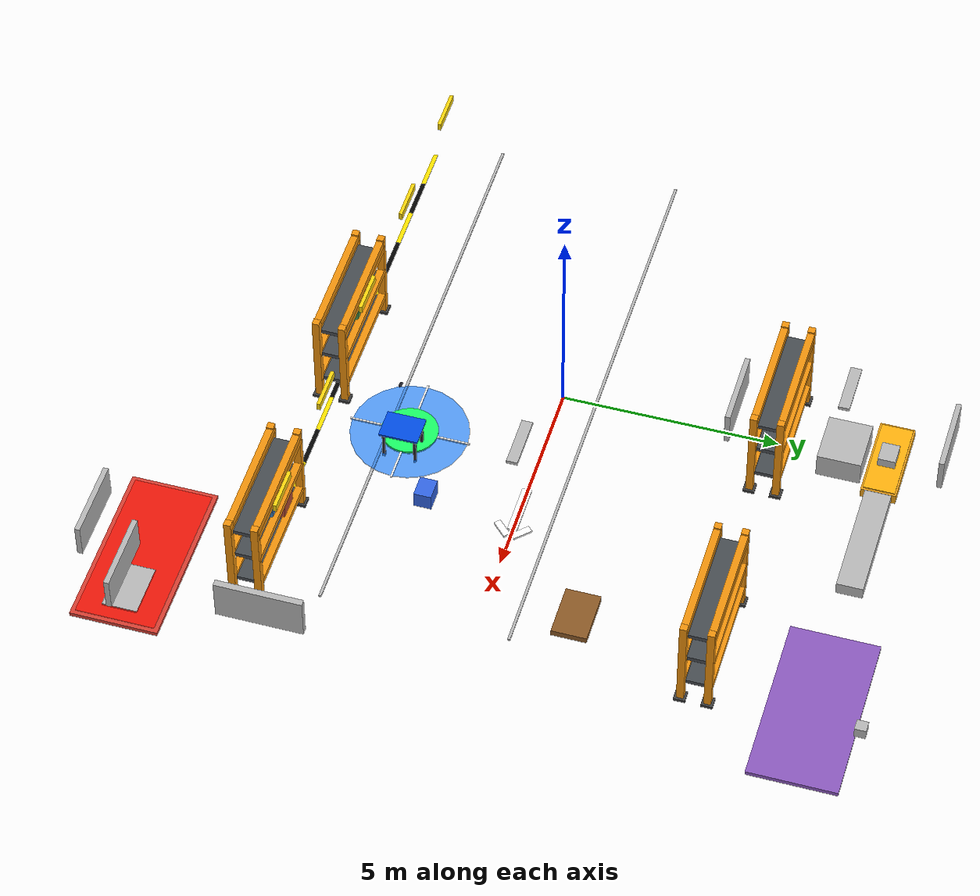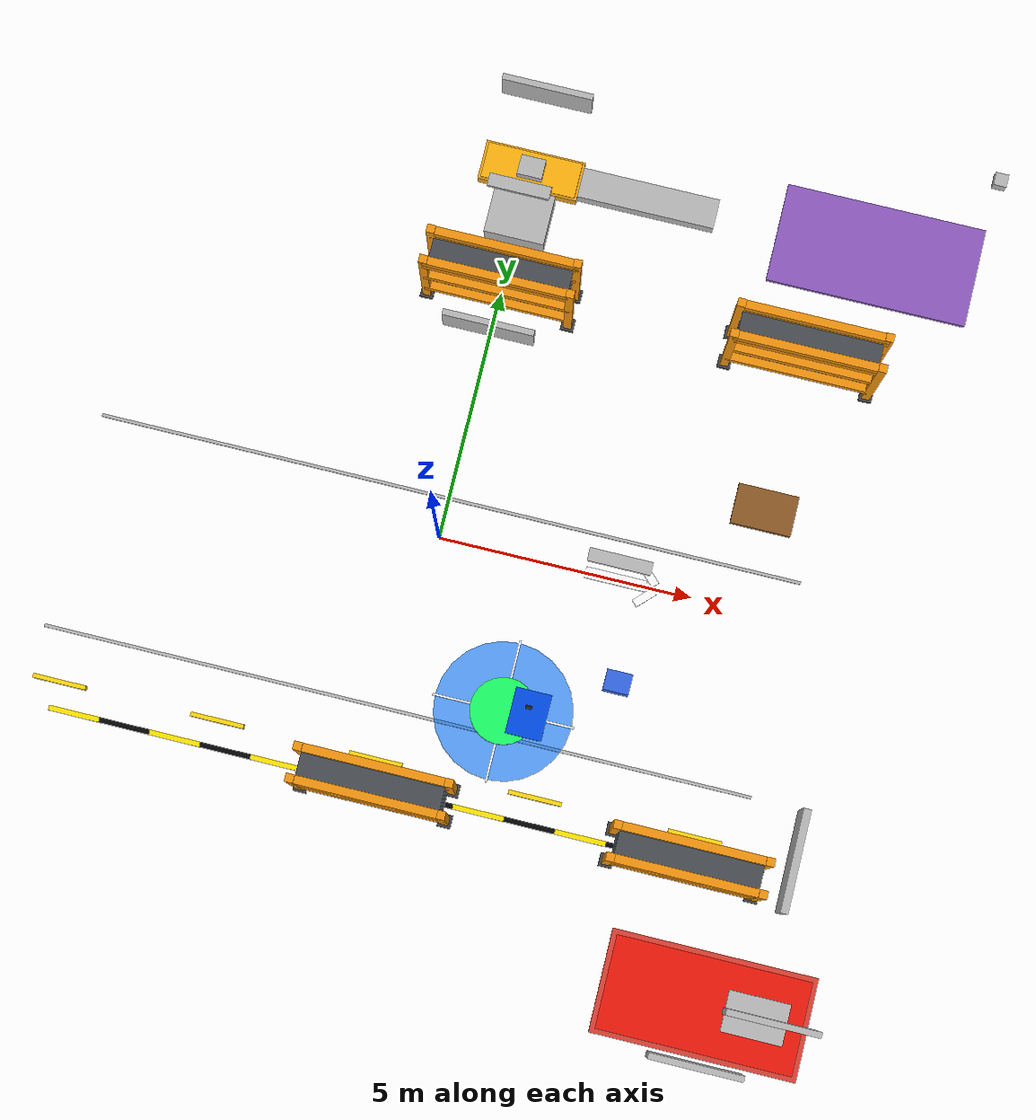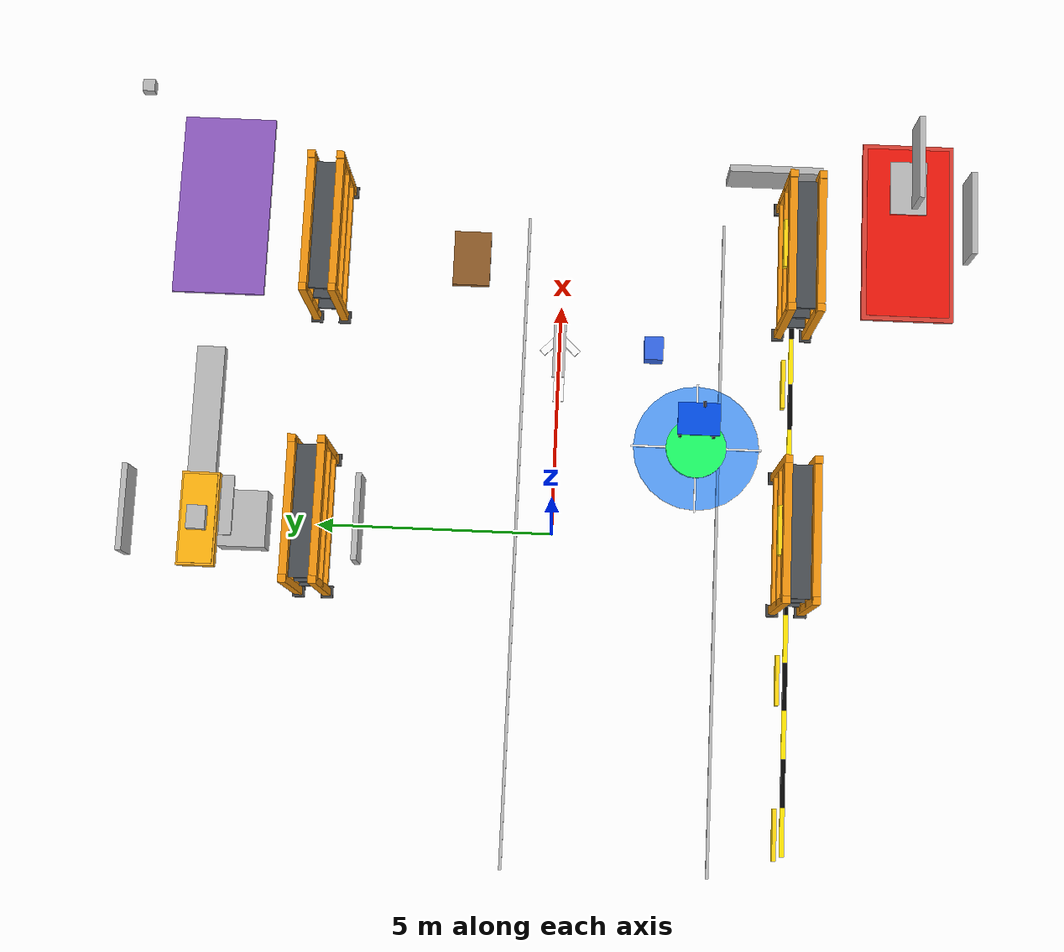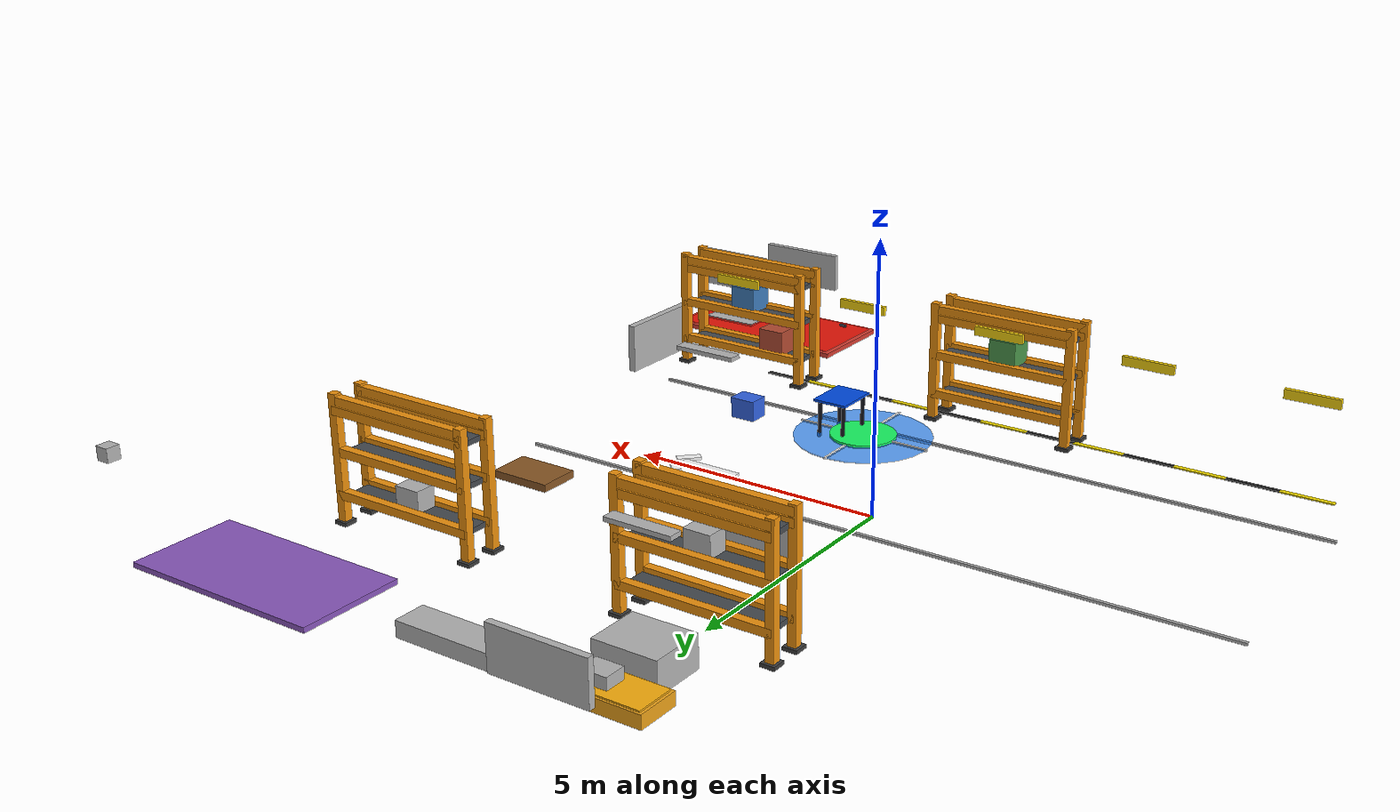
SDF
<sdf version="1.7">
 <world name="warehouse">
  <model name="shelf_2">
   <static>true</static>
   <pose>0 -5 0 0 0 0</pose>
   <link name="collision_frame">
    <collision name="collision"><geometry><box><size>3.0 0.8 2.4</size></box></geometry></collision>
   </link>
   <link name="upright_front_left">
    <visual name="visual">
     <geometry><box><size>0.16 0.16 2.4</size></box></geometry>
     <pose>-1.42 -0.30 1.20 0 0 0</pose>
     <material><ambient>0.80 0.45 0.04 1</ambient><diffuse>0.95 0.58 0.05 1</diffuse></material>
    </visual>
   </link>
   <link name="upright_front_right">
    <visual name="visual">
     <geometry><box><size>0.16 0.16 2.4</size></box></geometry>
     <pose>1.42 -0.30 1.20 0 0 0</pose>
     <material><ambient>0.80 0.45 0.04 1</ambient><diffuse>0.95 0.58 0.05 1</diffuse></material>
    </visual>
   </link>
   <link name="upright_rear_left">
    <visual name="visual">
     <geometry><box><size>0.16 0.16 2.4</size></box></geometry>
     <pose>-1.42 0.30 1.20 0 0 0</pose>
     <material><ambient>0.80 0.45 0.04 1</ambient><diffuse>0.95 0.58 0.05 1</diffuse></material>
    </visual>
   </link>
   <link name="upright_rear_right">
    <visual name="visual">
     <geometry><box><size>0.16 0.16 2.4</size></box></geometry>
     <pose>1.42 0.30 1.20 0 0 0</pose>
     <material><ambient>0.80 0.45 0.04 1</ambient><diffuse>0.95 0.58 0.05 1</diffuse></material>
    </visual>
   </link>
   <link name="top_beam_front">
    <visual name="visual">
     <geometry><box><size>2.90 0.16 0.16</size></box></geometry>
     <pose>0 -0.30 2.28 0 0 0</pose>
     <material><ambient>0.80 0.45 0.04 1</ambient><diffuse>0.95 0.58 0.05 1</diffuse></material>
    </visual>
   </link>
   <link name="top_beam_rear">
    <visual name="visual">
     <geometry><box><size>2.90 0.16 0.16</size></box></geometry>
     <pose>0 0.30 2.28 0 0 0</pose>
     <material><ambient>0.80 0.45 0.04 1</ambient><diffuse>0.95 0.58 0.05 1</diffuse></material>
    </visual>
   </link>
   <link name="level_1_front">
    <visual name="visual">
     <geometry><box><size>2.90 0.16 0.16</size></box></geometry>
     <pose>0 -0.30 0.55 0 0 0</pose>
     <material><ambient>0.80 0.45 0.04 1</ambient><diffuse>0.95 0.58 0.05 1</diffuse></material>
    </visual>
   </link>
   <link name="level_1_rear">
    <visual name="visual">
     <geometry><box><size>2.90 0.16 0.16</size></box></geometry>
     <pose>0 0.30 0.55 0 0 0</pose>
     <material><ambient>0.80 0.45 0.04 1</ambient><diffuse>0.95 0.58 0.05 1</diffuse></material>
    </visual>
   </link>
   <link name="level_2_front">
    <visual name="visual">
     <geometry><box><size>2.90 0.16 0.16</size></box></geometry>
     <pose>0 -0.30 1.35 0 0 0</pose>
     <material><ambient>0.80 0.45 0.04 1</ambient><diffuse>0.95 0.58 0.05 1</diffuse></material>
    </visual>
   </link>
   <link name="level_2_rear">
    <visual name="visual">
     <geometry><box><size>2.90 0.16 0.16</size></box></geometry>
     <pose>0 0.30 1.35 0 0 0</pose>
     <material><ambient>0.80 0.45 0.04 1</ambient><diffuse>0.95 0.58 0.05 1</diffuse></material>
    </visual>
   </link>
   <link name="level_3_front">
    <visual name="visual">
     <geometry><box><size>2.90 0.16 0.16</size></box></geometry>
     <pose>0 -0.30 2.10 0 0 0</pose>
     <material><ambient>0.80 0.45 0.04 1</ambient><diffuse>0.95 0.58 0.05 1</diffuse></material>
    </visual>
   </link>
   <link name="level_3_rear">
    <visual name="visual">
     <geometry><box><size>2.90 0.16 0.16</size></box></geometry>
     <pose>0 0.30 2.10 0 0 0</pose>
     <material><ambient>0.80 0.45 0.04 1</ambient><diffuse>0.95 0.58 0.05 1</diffuse></material>
    </visual>
   </link>
   <link name="deck_1">
    <visual name="visual">
     <geometry><box><size>2.72 0.56 0.10</size></box></geometry>
     <pose>0 0 0.49 0 0 0</pose>
     <material><ambient>0.18 0.20 0.22 1</ambient><diffuse>0.28 0.30 0.32 1</diffuse></material>
    </visual>
   </link>
   <link name="deck_2">
    <visual name="visual">
     <geometry><box><size>2.72 0.56 0.10</size></box></geometry>
     <pose>0 0 1.29 0 0 0</pose>
     <material><ambient>0.18 0.20 0.22 1</ambient><diffuse>0.28 0.30 0.32 1</diffuse></material>
    </visual>
   </link>
   <link name="deck_3">
    <visual name="visual">
     <geometry><box><size>2.72 0.56 0.10</size></box></geometry>
     <pose>0 0 2.04 0 0 0</pose>
     <material><ambient>0.18 0.20 0.22 1</ambient><diffuse>0.28 0.30 0.32 1</diffuse></material>
    </visual>
   </link>
   <link name="base_plate_left_front">
    <visual name="visual">
     <geometry><box><size>0.26 0.26 0.07</size></box></geometry>
     <pose>-1.42 -0.30 0.025 0 0 0</pose>
     <material><ambient>0.20 0.20 0.20 1</ambient><diffuse>0.25 0.25 0.25 1</diffuse></material>
    </visual>
   </link>
   <link name="base_plate_right_front">
    <visual name="visual">
     <geometry><box><size>0.26 0.26 0.07</size></box></geometry>
     <pose>1.42 -0.30 0.025 0 0 0</pose>
     <material><ambient>0.20 0.20 0.20 1</ambient><diffuse>0.25 0.25 0.25 1</diffuse></material>
    </visual>
   </link>
   <link name="base_plate_left_rear">
    <visual name="visual">
     <geometry><box><size>0.26 0.26 0.07</size></box></geometry>
     <pose>-1.42 0.30 0.025 0 0 0</pose>
     <material><ambient>0.20 0.20 0.20 1</ambient><diffuse>0.25 0.25 0.25 1</diffuse></material>
    </visual>
   </link>
   <link name="base_plate_right_rear">
    <visual name="visual">
     <geometry><box><size>0.26 0.26 0.07</size></box></geometry>
     <pose>1.42 0.30 0.025 0 0 0</pose>
     <material><ambient>0.20 0.20 0.20 1</ambient><diffuse>0.25 0.25 0.25 1</diffuse></material>
    </visual>
   </link>
  </model>
  <model name="shelf_3">
   <static>true</static>
   <pose>6 -5 0 0 0 0</pose>
   <link name="collision_frame">
    <collision name="collision"><geometry><box><size>3.0 0.8 2.4</size></box></geometry></collision>
   </link>
   <link name="upright_front_left">
    <visual name="visual">
     <geometry><box><size>0.16 0.16 2.4</size></box></geometry>
     <pose>-1.42 -0.30 1.20 0 0 0</pose>
     <material><ambient>0.80 0.45 0.04 1</ambient><diffuse>0.95 0.58 0.05 1</diffuse></material>
    </visual>
   </link>
   <link name="upright_front_right">
    <visual name="visual">
     <geometry><box><size>0.16 0.16 2.4</size></box></geometry>
     <pose>1.42 -0.30 1.20 0 0 0</pose>
     <material><ambient>0.80 0.45 0.04 1</ambient><diffuse>0.95 0.58 0.05 1</diffuse></material>
    </visual>
   </link>
   <link name="upright_rear_left">
    <visual name="visual">
     <geometry><box><size>0.16 0.16 2.4</size></box></geometry>
     <pose>-1.42 0.30 1.20 0 0 0</pose>
     <material><ambient>0.80 0.45 0.04 1</ambient><diffuse>0.95 0.58 0.05 1</diffuse></material>
    </visual>
   </link>
   <link name="upright_rear_right">
    <visual name="visual">
     <geometry><box><size>0.16 0.16 2.4</size></box></geometry>
     <pose>1.42 0.30 1.20 0 0 0</pose>
     <material><ambient>0.80 0.45 0.04 1</ambient><diffuse>0.95 0.58 0.05 1</diffuse></material>
    </visual>
   </link>
   <link name="top_beam_front">
    <visual name="visual">
     <geometry><box><size>2.90 0.16 0.16</size></box></geometry>
     <pose>0 -0.30 2.28 0 0 0</pose>
     <material><ambient>0.80 0.45 0.04 1</ambient><diffuse>0.95 0.58 0.05 1</diffuse></material>
    </visual>
   </link>
   <link name="top_beam_rear">
    <visual name="visual">
     <geometry><box><size>2.90 0.16 0.16</size></box></geometry>
     <pose>0 0.30 2.28 0 0 0</pose>
     <material><ambient>0.80 0.45 0.04 1</ambient><diffuse>0.95 0.58 0.05 1</diffuse></material>
    </visual>
   </link>
   <link name="level_1_front">
    <visual name="visual">
     <geometry><box><size>2.90 0.16 0.16</size></box></geometry>
     <pose>0 -0.30 0.55 0 0 0</pose>
     <material><ambient>0.80 0.45 0.04 1</ambient><diffuse>0.95 0.58 0.05 1</diffuse></material>
    </visual>
   </link>
   <link name="level_1_rear">
    <visual name="visual">
     <geometry><box><size>2.90 0.16 0.16</size></box></geometry>
     <pose>0 0.30 0.55 0 0 0</pose>
     <material><ambient>0.80 0.45 0.04 1</ambient><diffuse>0.95 0.58 0.05 1</diffuse></material>
    </visual>
   </link>
   <link name="level_2_front">
    <visual name="visual">
     <geometry><box><size>2.90 0.16 0.16</size></box></geometry>
     <pose>0 -0.30 1.35 0 0 0</pose>
     <material><ambient>0.80 0.45 0.04 1</ambient><diffuse>0.95 0.58 0.05 1</diffuse></material>
    </visual>
   </link>
   <link name="level_2_rear">
    <visual name="visual">
     <geometry><box><size>2.90 0.16 0.16</size></box></geometry>
     <pose>0 0.30 1.35 0 0 0</pose>
     <material><ambient>0.80 0.45 0.04 1</ambient><diffuse>0.95 0.58 0.05 1</diffuse></material>
    </visual>
   </link>
   <link name="level_3_front">
    <visual name="visual">
     <geometry><box><size>2.90 0.16 0.16</size></box></geometry>
     <pose>0 -0.30 2.10 0 0 0</pose>
     <material><ambient>0.80 0.45 0.04 1</ambient><diffuse>0.95 0.58 0.05 1</diffuse></material>
    </visual>
   </link>
   <link name="level_3_rear">
    <visual name="visual">
     <geometry><box><size>2.90 0.16 0.16</size></box></geometry>
     <pose>0 0.30 2.10 0 0 0</pose>
     <material><ambient>0.80 0.45 0.04 1</ambient><diffuse>0.95 0.58 0.05 1</diffuse></material>
    </visual>
   </link>
   <link name="deck_1">
    <visual name="visual">
     <geometry><box><size>2.72 0.56 0.10</size></box></geometry>
     <pose>0 0 0.49 0 0 0</pose>
     <material><ambient>0.18 0.20 0.22 1</ambient><diffuse>0.28 0.30 0.32 1</diffuse></material>
    </visual>
   </link>
   <link name="deck_2">
    <visual name="visual">
     <geometry><box><size>2.72 0.56 0.10</size></box></geometry>
     <pose>0 0 1.29 0 0 0</pose>
     <material><ambient>0.18 0.20 0.22 1</ambient><diffuse>0.28 0.30 0.32 1</diffuse></material>
    </visual>
   </link>
   <link name="deck_3">
    <visual name="visual">
     <geometry><box><size>2.72 0.56 0.10</size></box></geometry>
     <pose>0 0 2.04 0 0 0</pose>
     <material><ambient>0.18 0.20 0.22 1</ambient><diffuse>0.28 0.30 0.32 1</diffuse></material>
    </visual>
   </link>
   <link name="base_plate_left_front">
    <visual name="visual">
     <geometry><box><size>0.26 0.26 0.07</size></box></geometry>
     <pose>-1.42 -0.30 0.025 0 0 0</pose>
     <material><ambient>0.20 0.20 0.20 1</ambient><diffuse>0.25 0.25 0.25 1</diffuse></material>
    </visual>
   </link>
   <link name="base_plate_right_front">
    <visual name="visual">
     <geometry><box><size>0.26 0.26 0.07</size></box></geometry>
     <pose>1.42 -0.30 0.025 0 0 0</pose>
     <material><ambient>0.20 0.20 0.20 1</ambient><diffuse>0.25 0.25 0.25 1</diffuse></material>
    </visual>
   </link>
   <link name="base_plate_left_rear">
    <visual name="visual">
     <geometry><box><size>0.26 0.26 0.07</size></box></geometry>
     <pose>-1.42 0.30 0.025 0 0 0</pose>
     <material><ambient>0.20 0.20 0.20 1</ambient><diffuse>0.25 0.25 0.25 1</diffuse></material>
    </visual>
   </link>
   <link name="base_plate_right_rear">
    <visual name="visual">
     <geometry><box><size>0.26 0.26 0.07</size></box></geometry>
     <pose>1.42 0.30 0.025 0 0 0</pose>
     <material><ambient>0.20 0.20 0.20 1</ambient><diffuse>0.25 0.25 0.25 1</diffuse></material>
    </visual>
   </link>
  </model>
  <model name="shelf_5">
   <static>true</static>
   <pose>0 5 0 0 0 0</pose>
   <link name="collision_frame">
    <collision name="collision"><geometry><box><size>3.0 0.8 2.4</size></box></geometry></collision>
   </link>
   <link name="upright_front_left">
    <visual name="visual">
     <geometry><box><size>0.16 0.16 2.4</size></box></geometry>
     <pose>-1.42 -0.30 1.20 0 0 0</pose>
     <material><ambient>0.80 0.45 0.04 1</ambient><diffuse>0.95 0.58 0.05 1</diffuse></material>
    </visual>
   </link>
   <link name="upright_front_right">
    <visual name="visual">
     <geometry><box><size>0.16 0.16 2.4</size></box></geometry>
     <pose>1.42 -0.30 1.20 0 0 0</pose>
     <material><ambient>0.80 0.45 0.04 1</ambient><diffuse>0.95 0.58 0.05 1</diffuse></material>
    </visual>
   </link>
   <link name="upright_rear_left">
    <visual name="visual">
     <geometry><box><size>0.16 0.16 2.4</size></box></geometry>
     <pose>-1.42 0.30 1.20 0 0 0</pose>
     <material><ambient>0.80 0.45 0.04 1</ambient><diffuse>0.95 0.58 0.05 1</diffuse></material>
    </visual>
   </link>
   <link name="upright_rear_right">
    <visual name="visual">
     <geometry><box><size>0.16 0.16 2.4</size></box></geometry>
     <pose>1.42 0.30 1.20 0 0 0</pose>
     <material><ambient>0.80 0.45 0.04 1</ambient><diffuse>0.95 0.58 0.05 1</diffuse></material>
    </visual>
   </link>
   <link name="top_beam_front">
    <visual name="visual">
     <geometry><box><size>2.90 0.16 0.16</size></box></geometry>
     <pose>0 -0.30 2.28 0 0 0</pose>
     <material><ambient>0.80 0.45 0.04 1</ambient><diffuse>0.95 0.58 0.05 1</diffuse></material>
    </visual>
   </link>
   <link name="top_beam_rear">
    <visual name="visual">
     <geometry><box><size>2.90 0.16 0.16</size></box></geometry>
     <pose>0 0.30 2.28 0 0 0</pose>
     <material><ambient>0.80 0.45 0.04 1</ambient><diffuse>0.95 0.58 0.05 1</diffuse></material>
    </visual>
   </link>
   <link name="level_1_front">
    <visual name="visual">
     <geometry><box><size>2.90 0.16 0.16</size></box></geometry>
     <pose>0 -0.30 0.55 0 0 0</pose>
     <material><ambient>0.80 0.45 0.04 1</ambient><diffuse>0.95 0.58 0.05 1</diffuse></material>
    </visual>
   </link>
   <link name="level_1_rear">
    <visual name="visual">
     <geometry><box><size>2.90 0.16 0.16</size></box></geometry>
     <pose>0 0.30 0.55 0 0 0</pose>
     <material><ambient>0.80 0.45 0.04 1</ambient><diffuse>0.95 0.58 0.05 1</diffuse></material>
    </visual>
   </link>
   <link name="level_2_front">
    <visual name="visual">
     <geometry><box><size>2.90 0.16 0.16</size></box></geometry>
     <pose>0 -0.30 1.35 0 0 0</pose>
     <material><ambient>0.80 0.45 0.04 1</ambient><diffuse>0.95 0.58 0.05 1</diffuse></material>
    </visual>
   </link>
   <link name="level_2_rear">
    <visual name="visual">
     <geometry><box><size>2.90 0.16 0.16</size></box></geometry>
     <pose>0 0.30 1.35 0 0 0</pose>
     <material><ambient>0.80 0.45 0.04 1</ambient><diffuse>0.95 0.58 0.05 1</diffuse></material>
    </visual>
   </link>
   <link name="level_3_front">
    <visual name="visual">
     <geometry><box><size>2.90 0.16 0.16</size></box></geometry>
     <pose>0 -0.30 2.10 0 0 0</pose>
     <material><ambient>0.80 0.45 0.04 1</ambient><diffuse>0.95 0.58 0.05 1</diffuse></material>
    </visual>
   </link>
   <link name="level_3_rear">
    <visual name="visual">
     <geometry><box><size>2.90 0.16 0.16</size></box></geometry>
     <pose>0 0.30 2.10 0 0 0</pose>
     <material><ambient>0.80 0.45 0.04 1</ambient><diffuse>0.95 0.58 0.05 1</diffuse></material>
    </visual>
   </link>
   <link name="deck_1">
    <visual name="visual">
     <geometry><box><size>2.72 0.56 0.10</size></box></geometry>
     <pose>0 0 0.49 0 0 0</pose>
     <material><ambient>0.18 0.20 0.22 1</ambient><diffuse>0.28 0.30 0.32 1</diffuse></material>
    </visual>
   </link>
   <link name="deck_2">
    <visual name="visual">
     <geometry><box><size>2.72 0.56 0.10</size></box></geometry>
     <pose>0 0 1.29 0 0 0</pose>
     <material><ambient>0.18 0.20 0.22 1</ambient><diffuse>0.28 0.30 0.32 1</diffuse></material>
    </visual>
   </link>
   <link name="deck_3">
    <visual name="visual">
     <geometry><box><size>2.72 0.56 0.10</size></box></geometry>
     <pose>0 0 2.04 0 0 0</pose>
     <material><ambient>0.18 0.20 0.22 1</ambient><diffuse>0.28 0.30 0.32 1</diffuse></material>
    </visual>
   </link>
   <link name="base_plate_left_front">
    <visual name="visual">
     <geometry><box><size>0.26 0.26 0.07</size></box></geometry>
     <pose>-1.42 -0.30 0.025 0 0 0</pose>
     <material><ambient>0.20 0.20 0.20 1</ambient><diffuse>0.25 0.25 0.25 1</diffuse></material>
    </visual>
   </link>
   <link name="base_plate_right_front">
    <visual name="visual">
     <geometry><box><size>0.26 0.26 0.07</size></box></geometry>
     <pose>1.42 -0.30 0.025 0 0 0</pose>
     <material><ambient>0.20 0.20 0.20 1</ambient><diffuse>0.25 0.25 0.25 1</diffuse></material>
    </visual>
   </link>
   <link name="base_plate_left_rear">
    <visual name="visual">
     <geometry><box><size>0.26 0.26 0.07</size></box></geometry>
     <pose>-1.42 0.30 0.025 0 0 0</pose>
     <material><ambient>0.20 0.20 0.20 1</ambient><diffuse>0.25 0.25 0.25 1</diffuse></material>
    </visual>
   </link>
   <link name="base_plate_right_rear">
    <visual name="visual">
     <geometry><box><size>0.26 0.26 0.07</size></box></geometry>
     <pose>1.42 0.30 0.025 0 0 0</pose>
     <material><ambient>0.20 0.20 0.20 1</ambient><diffuse>0.25 0.25 0.25 1</diffuse></material>
    </visual>
   </link>
  </model>
  <model name="shelf_6">
   <static>true</static>
   <pose>6 5 0 0 0 0</pose>
   <link name="collision_frame">
    <collision name="collision"><geometry><box><size>3.0 0.8 2.4</size></box></geometry></collision>
   </link>
   <link name="upright_front_left">
    <visual name="visual">
     <geometry><box><size>0.16 0.16 2.4</size></box></geometry>
     <pose>-1.42 -0.30 1.20 0 0 0</pose>
     <material><ambient>0.80 0.45 0.04 1</ambient><diffuse>0.95 0.58 0.05 1</diffuse></material>
    </visual>
   </link>
   <link name="upright_front_right">
    <visual name="visual">
     <geometry><box><size>0.16 0.16 2.4</size></box></geometry>
     <pose>1.42 -0.30 1.20 0 0 0</pose>
     <material><ambient>0.80 0.45 0.04 1</ambient><diffuse>0.95 0.58 0.05 1</diffuse></material>
    </visual>
   </link>
   <link name="upright_rear_left">
    <visual name="visual">
     <geometry><box><size>0.16 0.16 2.4</size></box></geometry>
     <pose>-1.42 0.30 1.20 0 0 0</pose>
     <material><ambient>0.80 0.45 0.04 1</ambient><diffuse>0.95 0.58 0.05 1</diffuse></material>
    </visual>
   </link>
   <link name="upright_rear_right">
    <visual name="visual">
     <geometry><box><size>0.16 0.16 2.4</size></box></geometry>
     <pose>1.42 0.30 1.20 0 0 0</pose>
     <material><ambient>0.80 0.45 0.04 1</ambient><diffuse>0.95 0.58 0.05 1</diffuse></material>
    </visual>
   </link>
   <link name="top_beam_front">
    <visual name="visual">
     <geometry><box><size>2.90 0.16 0.16</size></box></geometry>
     <pose>0 -0.30 2.28 0 0 0</pose>
     <material><ambient>0.80 0.45 0.04 1</ambient><diffuse>0.95 0.58 0.05 1</diffuse></material>
    </visual>
   </link>
   <link name="top_beam_rear">
    <visual name="visual">
     <geometry><box><size>2.90 0.16 0.16</size></box></geometry>
     <pose>0 0.30 2.28 0 0 0</pose>
     <material><ambient>0.80 0.45 0.04 1</ambient><diffuse>0.95 0.58 0.05 1</diffuse></material>
    </visual>
   </link>
   <link name="level_1_front">
    <visual name="visual">
     <geometry><box><size>2.90 0.16 0.16</size></box></geometry>
     <pose>0 -0.30 0.55 0 0 0</pose>
     <material><ambient>0.80 0.45 0.04 1</ambient><diffuse>0.95 0.58 0.05 1</diffuse></material>
    </visual>
   </link>
   <link name="level_1_rear">
    <visual name="visual">
     <geometry><box><size>2.90 0.16 0.16</size></box></geometry>
     <pose>0 0.30 0.55 0 0 0</pose>
     <material><ambient>0.80 0.45 0.04 1</ambient><diffuse>0.95 0.58 0.05 1</diffuse></material>
    </visual>
   </link>
   <link name="level_2_front">
    <visual name="visual">
     <geometry><box><size>2.90 0.16 0.16</size></box></geometry>
     <pose>0 -0.30 1.35 0 0 0</pose>
     <material><ambient>0.80 0.45 0.04 1</ambient><diffuse>0.95 0.58 0.05 1</diffuse></material>
    </visual>
   </link>
   <link name="level_2_rear">
    <visual name="visual">
     <geometry><box><size>2.90 0.16 0.16</size></box></geometry>
     <pose>0 0.30 1.35 0 0 0</pose>
     <material><ambient>0.80 0.45 0.04 1</ambient><diffuse>0.95 0.58 0.05 1</diffuse></material>
    </visual>
   </link>
   <link name="level_3_front">
    <visual name="visual">
     <geometry><box><size>2.90 0.16 0.16</size></box></geometry>
     <pose>0 -0.30 2.10 0 0 0</pose>
     <material><ambient>0.80 0.45 0.04 1</ambient><diffuse>0.95 0.58 0.05 1</diffuse></material>
    </visual>
   </link>
   <link name="level_3_rear">
    <visual name="visual">
     <geometry><box><size>2.90 0.16 0.16</size></box></geometry>
     <pose>0 0.30 2.10 0 0 0</pose>
     <material><ambient>0.80 0.45 0.04 1</ambient><diffuse>0.95 0.58 0.05 1</diffuse></material>
    </visual>
   </link>
   <link name="deck_1">
    <visual name="visual">
     <geometry><box><size>2.72 0.56 0.10</size></box></geometry>
     <pose>0 0 0.49 0 0 0</pose>
     <material><ambient>0.18 0.20 0.22 1</ambient><diffuse>0.28 0.30 0.32 1</diffuse></material>
    </visual>
   </link>
   <link name="deck_2">
    <visual name="visual">
     <geometry><box><size>2.72 0.56 0.10</size></box></geometry>
     <pose>0 0 1.29 0 0 0</pose>
     <material><ambient>0.18 0.20 0.22 1</ambient><diffuse>0.28 0.30 0.32 1</diffuse></material>
    </visual>
   </link>
   <link name="deck_3">
    <visual name="visual">
     <geometry><box><size>2.72 0.56 0.10</size></box></geometry>
     <pose>0 0 2.04 0 0 0</pose>
     <material><ambient>0.18 0.20 0.22 1</ambient><diffuse>0.28 0.30 0.32 1</diffuse></material>
    </visual>
   </link>
   <link name="base_plate_left_front">
    <visual name="visual">
     <geometry><box><size>0.26 0.26 0.07</size></box></geometry>
     <pose>-1.42 -0.30 0.025 0 0 0</pose>
     <material><ambient>0.20 0.20 0.20 1</ambient><diffuse>0.25 0.25 0.25 1</diffuse></material>
    </visual>
   </link>
   <link name="base_plate_right_front">
    <visual name="visual">
     <geometry><box><size>0.26 0.26 0.07</size></box></geometry>
     <pose>1.42 -0.30 0.025 0 0 0</pose>
     <material><ambient>0.20 0.20 0.20 1</ambient><diffuse>0.25 0.25 0.25 1</diffuse></material>
    </visual>
   </link>
   <link name="base_plate_left_rear">
    <visual name="visual">
     <geometry><box><size>0.26 0.26 0.07</size></box></geometry>
     <pose>-1.42 0.30 0.025 0 0 0</pose>
     <material><ambient>0.20 0.20 0.20 1</ambient><diffuse>0.25 0.25 0.25 1</diffuse></material>
    </visual>
   </link>
   <link name="base_plate_right_rear">
    <visual name="visual">
     <geometry><box><size>0.26 0.26 0.07</size></box></geometry>
     <pose>1.42 0.30 0.025 0 0 0</pose>
     <material><ambient>0.20 0.20 0.20 1</ambient><diffuse>0.25 0.25 0.25 1</diffuse></material>
    </visual>
   </link>
  </model>
  <model name="rack2_box_b">
   <static>true</static>
   <pose>0.0 -5.0 1.62 0 0 0</pose>
   <link name="link">
    <visual name="visual">
     <geometry><box><size>0.55 0.55 0.50</size></box></geometry>
     <material><ambient>0.30 0.60 0.30 1</ambient><diffuse>0.30 0.60 0.30 1</diffuse></material>
    </visual>
   </link>
  </model>
  <model name="rack3_box_a">
   <static>true</static>
   <pose>5.3 -5.0 0.82 0 0 0</pose>
   <link name="link">
    <visual name="visual">
     <geometry><box><size>0.55 0.55 0.50</size></box></geometry>
     <material><ambient>0.72 0.30 0.20 1</ambient><diffuse>0.72 0.30 0.20 1</diffuse></material>
    </visual>
   </link>
  </model>
  <model name="rack3_box_b">
   <static>true</static>
   <pose>6.0 -5.0 1.62 0 0 0</pose>
   <link name="link">
    <visual name="visual">
     <geometry><box><size>0.55 0.55 0.50</size></box></geometry>
     <material><ambient>0.25 0.50 0.75 1</ambient><diffuse>0.25 0.50 0.75 1</diffuse></material>
    </visual>
   </link>
  </model>
  <model name="pallet_2">
   <static>true</static>
   <pose>6 2 0.075 0 0 0</pose>
   <link name="link">
    <collision name="collision"><geometry><box><size>1.2 0.8 0.15</size></box></geometry></collision>
    <visual name="visual">
     <geometry><box><size>1.2 0.8 0.15</size></box></geometry>
     <material><ambient>0.55 0.35 0.15 1</ambient><diffuse>0.55 0.35 0.15 1</diffuse></material>
    </visual>
   </link>
  </model>
  <model name="box_2">
   <pose>4 -2 0.55 0 0 0</pose>
   <static>true</static>
   <link name="link">
    <collision name="collision"><geometry><box><size>0.5 0.4 0.4</size></box></geometry></collision>
    <visual name="visual">
     <geometry><box><size>0.5 0.4 0.4</size></box></geometry>
     <material><ambient>0.2 0.4 0.9 1</ambient><diffuse>0.2 0.4 0.9 1</diffuse></material>
    </visual>
   </link>
  </model>
  <model name="packing_zone">
   <static>true</static>
   <pose>0 7.5 0.18 0 0 0</pose>
   <link name="link">
    <visual name="visual">
     <material><ambient>0.65 0.40 0.05 1</ambient><diffuse>0.95 0.65 0.10 1</diffuse></material>
     <geometry><box><size>2.0 0.8 0.25</size></box></geometry>
    </visual>
   </link>
  </model>
  <model name="delivery_zone">
   <static>true</static>
   <pose>7.0 -7.5 0.05 0 0 0</pose>
   <link name="link">
    <visual name="visual">
     <material><ambient>0.55 0.12 0.10 1</ambient><diffuse>0.85 0.25 0.20 1</diffuse></material>
     <geometry><box><size>4.0 2.0 0.10</size></box></geometry>
    </visual>
   </link>
  </model>
  <model name="robot_staging">
   <static>true</static>
   <pose>7.0 7.5 0.05 0 0 0</pose>
   <link name="link">
    <visual name="visual">
     <material><ambient>0.32 0.18 0.48 1</ambient><diffuse>0.55 0.35 0.75 1</diffuse></material>
     <geometry><box><size>4.0 2.0 0.10</size></box></geometry>
    </visual>
   </link>
  </model>
  <model name="pallet_4">
   <static>true</static>
   <pose>8.0 -7.5 0.075 0 0 0</pose>
   <link name="link">
    <visual name="visual"><geometry><box><size>1.2 0.8 0.15</size></box></geometry></visual>
   </link>
  </model>
  <model name="box_6">
   <static>true</static>
   <pose>0.0 5.0 1.55 0 0 0</pose>
   <link name="link">
    <visual name="visual"><geometry><box><size>0.5 0.4 0.4</size></box></geometry></visual>
   </link>
  </model>
  <model name="box_7">
   <static>true</static>
   <pose>6.0 5.0 0.75 0 0 0</pose>
   <link name="link">
    <visual name="visual"><geometry><box><size>0.5 0.4 0.4</size></box></geometry></visual>
   </link>
  </model>
  <model name="box_8">
   <static>true</static>
   <pose>0.0 7.5 0.35 0 0 0</pose>
   <link name="link">
    <visual name="visual"><geometry><box><size>0.5 0.4 0.4</size></box></geometry></visual>
   </link>
  </model>
  <model name="tote_3">
   <static>true</static>
   <pose>0.0 6.5 0.20 0 0 0</pose>
   <link name="link">
    <visual name="visual"><geometry><box><size>0.7 0.5 0.4</size></box></geometry></visual>
   </link>
  </model>
  <model name="packing_station">
   <static>true</static>
   <pose>0 6.5 0.30 0 0 0</pose>
   <link name="link">
    <visual name="visual"><geometry><box><size>1.2 1.0 0.60</size></box></geometry></visual>
   </link>
  </model>
  <model name="conveyor_w19">
   <static>true</static>
   <pose>2.0 7.5 0.15 0 0 0</pose>
   <link name="link">
    <visual name="visual"><geometry><box><size>3.5 0.6 0.30</size></box></geometry></visual>
   </link>
  </model>
  <model name="safety_line_main">
   <static>true</static>
   <pose>0 0.78 0.025 0 0 0</pose>
   <link name="link">
    <visual name="visual"><geometry><box><size>14.0 0.06 0.05</size></box></geometry></visual>
   </link>
  </model>
  <model name="safety_line_cross">
   <static>true</static>
   <pose>0 -3.48 0.025 0 0 0</pose>
   <link name="link">
    <visual name="visual"><geometry><box><size>14.0 0.06 0.05</size></box></geometry></visual>
   </link>
  </model>
  <model name="direction_arrow_main">
   <static>true</static>
   <pose>3.5 0 0.035 0 0 0</pose>
   <link name="link">
    <visual name="visual"><geometry><box><size>0.9 0.18 0.04</size></box></geometry></visual>
   </link>
  </model>
  <model name="sign_storage">
   <static>true</static>
   <pose>0.0 4.0 1.2 0 0 0</pose>
   <link name="link">
    <visual name="visual"><geometry><box><size>1.8 0.12 0.8</size></box></geometry></visual>
   </link>
  </model>
  <model name="sign_packing">
   <static>true</static>
   <pose>0.0 8.8 1.2 0 0 0</pose>
   <link name="link">
    <visual name="visual"><geometry><box><size>1.8 0.12 0.8</size></box></geometry></visual>
   </link>
  </model>
  <model name="sign_outbound">
   <static>true</static>
   <pose>7.0 -8.6 1.2 0 0 0</pose>
   <link name="link">
    <visual name="visual"><geometry><box><size>1.8 0.12 0.8</size></box></geometry></visual>
   </link>
  </model>
  <model name="sign_delivery">
   <static>true</static>
   <pose>8.2 -7.5 1.2 0 0 0</pose>
   <link name="link">
    <visual name="visual"><geometry><box><size>1.8 0.12 0.8</size></box></geometry></visual>
   </link>
  </model>
  <model name="industrial_light_2">
   <static>true</static>
   <pose>3.5 0 2.35 0 0 0</pose>
   <link name="link">
    <visual name="visual"><geometry><box><size>1.2 0.25 0.08</size></box></geometry></visual>
   </link>
  </model>
  <model name="industrial_light_3">
   <static>true</static>
   <pose>0 6.5 2.35 0 0 0</pose>
   <link name="link">
    <visual name="visual"><geometry><box><size>1.2 0.25 0.08</size></box></geometry></visual>
   </link>
  </model>
  <model name="cctv_2">
   <static>true</static>
   <pose>8.8 8.8 2.2 0 0 0</pose>
   <link name="link">
    <visual name="visual"><geometry><box><size>0.25 0.25 0.25</size></box></geometry></visual>
   </link>
  </model>
  <model name="safety_barrier_2">
   <static>true</static>
   <pose>8.0 -4.5 0.5 0 0 0</pose>
   <link name="link">
    <visual name="visual"><geometry><box><size>0.15 2.0 1.0</size></box></geometry></visual>
   </link>
  </model>
  <model name="v52_packing_marker">
   <static>true</static>
   <pose>0.0 7.5 0.315 0 0 0</pose>
   <link name="link">
    <visual name="marker">
     <geometry><box><size>1.90 0.72 0.035</size></box></geometry>
     <material><ambient>0.95 0.55 0.02 0.90</ambient><diffuse>1.00 0.70 0.05 0.90</diffuse></material>
    </visual>
   </link>
  </model>
  <model name="v52_delivery_marker">
   <static>true</static>
   <pose>7.0 -7.5 0.115 0 0 0</pose>
   <link name="link">
    <visual name="marker">
     <geometry><box><size>3.80 1.80 0.025</size></box></geometry>
     <material><ambient>0.90 0.05 0.05 0.80</ambient><diffuse>1.00 0.10 0.05 0.80</diffuse></material>
    </visual>
   </link>
  </model>
  <model name="v52_handover_marker">
   <static>true</static>
   <pose>2.0 -3.0 0.065 0 0 0</pose>
   <link name="link">
    <visual name="marker">
     <geometry><cylinder><radius>1.35</radius><length>0.025</length></cylinder></geometry>
     <material><ambient>0.05 0.35 0.95 0.70</ambient><diffuse>0.10 0.50 1.00 0.70</diffuse></material>
    </visual>
   </link>
  </model>
  <model name="v52_safety_stripes_1">
   <static>true</static>
   <pose>0.0 -5.0 0.035 0 0 0</pose>
   <link name="link">
    <visual name="stripe_a">
     <pose>-6.0 0 0 0 0 0</pose>
     <geometry><box><size>1.0 0.10 0.025</size></box></geometry>
     <material><ambient>1 0.85 0 1</ambient><diffuse>1 0.9 0 1</diffuse></material>
    </visual>
    <visual name="stripe_b">
     <pose>-5.0 0 0 0 0 0</pose>
     <geometry><box><size>1.0 0.10 0.025</size></box></geometry>
     <material><ambient>0.02 0.02 0.02 1</ambient><diffuse>0.02 0.02 0.02 1</diffuse></material>
    </visual>
    <visual name="stripe_c">
     <pose>-4.0 0 0 0 0 0</pose>
     <geometry><box><size>1.0 0.10 0.025</size></box></geometry>
     <material><ambient>1 0.85 0 1</ambient><diffuse>1 0.9 0 1</diffuse></material>
    </visual>
    <visual name="stripe_d">
     <pose>-3.0 0 0 0 0 0</pose>
     <geometry><box><size>1.0 0.10 0.025</size></box></geometry>
     <material><ambient>0.02 0.02 0.02 1</ambient><diffuse>0.02 0.02 0.02 1</diffuse></material>
    </visual>
    <visual name="stripe_e">
     <pose>-2.0 0 0 0 0 0</pose>
     <geometry><box><size>1.0 0.10 0.025</size></box></geometry>
     <material><ambient>1 0.85 0 1</ambient><diffuse>1 0.9 0 1</diffuse></material>
    </visual>
    <visual name="stripe_f">
     <pose>-1.0 0 0 0 0 0</pose>
     <geometry><box><size>1.0 0.10 0.025</size></box></geometry>
     <material><ambient>0.02 0.02 0.02 1</ambient><diffuse>0.02 0.02 0.02 1</diffuse></material>
    </visual>
    <visual name="stripe_g">
     <geometry><box><size>1.0 0.10 0.025</size></box></geometry>
     <material><ambient>1 0.85 0 1</ambient><diffuse>1 0.9 0 1</diffuse></material>
    </visual>
    <visual name="stripe_h">
     <pose>1.0 0 0 0 0 0</pose>
     <geometry><box><size>1.0 0.10 0.025</size></box></geometry>
     <material><ambient>0.02 0.02 0.02 1</ambient><diffuse>0.02 0.02 0.02 1</diffuse></material>
    </visual>
    <visual name="stripe_i">
     <pose>2.0 0 0 0 0 0</pose>
     <geometry><box><size>1.0 0.10 0.025</size></box></geometry>
     <material><ambient>1 0.85 0 1</ambient><diffuse>1 0.9 0 1</diffuse></material>
    </visual>
    <visual name="stripe_j">
     <pose>3.0 0 0 0 0 0</pose>
     <geometry><box><size>1.0 0.10 0.025</size></box></geometry>
     <material><ambient>0.02 0.02 0.02 1</ambient><diffuse>0.02 0.02 0.02 1</diffuse></material>
    </visual>
    <visual name="stripe_k">
     <pose>4.0 0 0 0 0 0</pose>
     <geometry><box><size>1.0 0.10 0.025</size></box></geometry>
     <material><ambient>1 0.85 0 1</ambient><diffuse>1 0.9 0 1</diffuse></material>
    </visual>
    <visual name="stripe_l">
     <pose>5.0 0 0 0 0 0</pose>
     <geometry><box><size>1.0 0.10 0.025</size></box></geometry>
     <material><ambient>0.02 0.02 0.02 1</ambient><diffuse>0.02 0.02 0.02 1</diffuse></material>
    </visual>
   </link>
  </model>
  <model name="v52_arrow_forward">
   <static>true</static>
   <pose>3.5 0.0 0.07 0 0 0</pose>
   <link name="link">
    <visual name="shaft">
     <geometry><box><size>1.20 0.22 0.05</size></box></geometry>
     <material><ambient>1 1 1 1</ambient><diffuse>1 1 1 1</diffuse></material>
    </visual>
    <visual name="head1">
     <pose>0.62 0.22 0 0 0 -0.7854</pose>
     <geometry><box><size>0.45 0.16 0.05</size></box></geometry>
     <material><ambient>1 1 1 1</ambient><diffuse>1 1 1 1</diffuse></material>
    </visual>
    <visual name="head2">
     <pose>0.62 -0.22 0 0 0 0.7854</pose>
     <geometry><box><size>0.45 0.16 0.05</size></box></geometry>
     <material><ambient>1 1 1 1</ambient><diffuse>1 1 1 1</diffuse></material>
    </visual>
   </link>
  </model>
  <model name="v52_ammr_arrival">
   <static>true</static>
   <pose>2.0 -3.0 0.09 0 0 0</pose>
   <link name="link">
    <visual name="pad">
     <geometry><cylinder><radius>0.65</radius><length>0.06</length></cylinder></geometry>
     <material><ambient>0.05 0.90 0.30 0.90</ambient><diffuse>0.10 1.00 0.40 0.90</diffuse></material>
    </visual>
   </link>
  </model>
  <model name="v52_rack_id_markers">
   <static>true</static>
   <pose>0 -4.58 2.05 0 0 0</pose>
   <link name="link">
    <visual name="r1">
     <pose>-6 0 0 0 0 0</pose>
     <geometry><box><size>1.0 0.08 0.18</size></box></geometry>
     <material><ambient>1 0.75 0.05 1</ambient><diffuse>1 0.85 0.05 1</diffuse></material>
    </visual>
    <visual name="r2">
     <pose>-3 0 0 0 0 0</pose>
     <geometry><box><size>1.0 0.08 0.18</size></box></geometry>
     <material><ambient>1 0.75 0.05 1</ambient><diffuse>1 0.85 0.05 1</diffuse></material>
    </visual>
    <visual name="r3">
     <geometry><box><size>1.0 0.08 0.18</size></box></geometry>
     <material><ambient>1 0.75 0.05 1</ambient><diffuse>1 0.85 0.05 1</diffuse></material>
    </visual>
    <visual name="r4">
     <pose>3 0 0 0 0 0</pose>
     <geometry><box><size>1.0 0.08 0.18</size></box></geometry>
     <material><ambient>1 0.75 0.05 1</ambient><diffuse>1 0.85 0.05 1</diffuse></material>
    </visual>
    <visual name="r5">
     <pose>6 0 0 0 0 0</pose>
     <geometry><box><size>1.0 0.08 0.18</size></box></geometry>
     <material><ambient>1 0.75 0.05 1</ambient><diffuse>1 0.85 0.05 1</diffuse></material>
    </visual>
   </link>
  </model>
  <model name="v52_handover_border">
   <static>true</static>
   <pose>2.0 -3.0 0.08 0 0 0</pose>
   <link name="link">
    <visual name="border_x">
     <geometry><box><size>2.8 0.04 0.04</size></box></geometry>
     <material><ambient>1 1 1 0.90</ambient><diffuse>1 1 1 0.90</diffuse></material>
    </visual>
    <visual name="border_y">
     <pose>0 0 0 0 0 1.5708</pose>
     <geometry><box><size>2.8 0.04 0.04</size></box></geometry>
     <material><ambient>1 1 1 0.90</ambient><diffuse>1 1 1 0.90</diffuse></material>
    </visual>
   </link>
  </model>
  <model name="table_bottle_handover">
   <static>true</static>
   <pose>2.5 -3.0 0 0 0 1.5708</pose>
   <link name="link">
    <collision name="top_col">
     <pose>0 0 0.7550 0 0 0</pose>
     <geometry><box><size>0.9 0.7 0.05</size></box></geometry>
    </collision>
    <visual name="top_vis">
     <pose>0 0 0.7550 0 0 0</pose>
     <geometry><box><size>0.9 0.7 0.05</size></box></geometry>
     <material><ambient>0.0 0.3 0.9 1</ambient><diffuse>0.0 0.3 0.9 1</diffuse></material>
    </visual>
    <collision name="leg0_col">
     <pose>-0.360 -0.260 0.3650 0 0 0</pose>
     <geometry><box><size>0.06 0.06 0.73</size></box></geometry>
    </collision>
    <visual name="leg0_vis">
     <pose>-0.360 -0.260 0.3650 0 0 0</pose>
     <geometry><box><size>0.06 0.06 0.73</size></box></geometry>
     <material><ambient>0.12 0.12 0.15 1</ambient><diffuse>0.12 0.12 0.15 1</diffuse></material>
    </visual>
    <collision name="leg1_col">
     <pose>-0.360 0.260 0.3650 0 0 0</pose>
     <geometry><box><size>0.06 0.06 0.73</size></box></geometry>
    </collision>
    <visual name="leg1_vis">
     <pose>-0.360 0.260 0.3650 0 0 0</pose>
     <geometry><box><size>0.06 0.06 0.73</size></box></geometry>
     <material><ambient>0.12 0.12 0.15 1</ambient><diffuse>0.12 0.12 0.15 1</diffuse></material>
    </visual>
    <collision name="leg2_col">
     <pose>0.360 -0.260 0.3650 0 0 0</pose>
     <geometry><box><size>0.06 0.06 0.73</size></box></geometry>
    </collision>
    <visual name="leg2_vis">
     <pose>0.360 -0.260 0.3650 0 0 0</pose>
     <geometry><box><size>0.06 0.06 0.73</size></box></geometry>
     <material><ambient>0.12 0.12 0.15 1</ambient><diffuse>0.12 0.12 0.15 1</diffuse></material>
    </visual>
    <collision name="leg3_col">
     <pose>0.360 0.260 0.3650 0 0 0</pose>
     <geometry><box><size>0.06 0.06 0.73</size></box></geometry>
    </collision>
    <visual name="leg3_vis">
     <pose>0.360 0.260 0.3650 0 0 0</pose>
     <geometry><box><size>0.06 0.06 0.73</size></box></geometry>
     <material><ambient>0.12 0.12 0.15 1</ambient><diffuse>0.12 0.12 0.15 1</diffuse></material>
    </visual>
   </link>
  </model>
  <model name="tron1_station_camera">
   <static>true</static>
   <pose>2.5 -3.0 2.2 0 0.6 -1.5708</pose>
   <link name="link">
    <visual name="visual">
     <geometry><box><size>0.06 0.12 0.04</size></box></geometry>
     <material><ambient>0.2 0.2 0.25 1</ambient><diffuse>0.2 0.2 0.25 1</diffuse></material>
    </visual>
    <sensor name="station_rgbd_camera" type="depth">
     <update_rate>30</update_rate>
     <camera>
      <horizontal_fov>1.047</horizontal_fov>
      <image><width>640</width><height>480</height><format>R8G8B8</format></image>
      <clip><near>0.1</near><far>10.0</far></clip>
     </camera>
    </sensor>
   </link>
  </model>
 </world>
</sdf>
